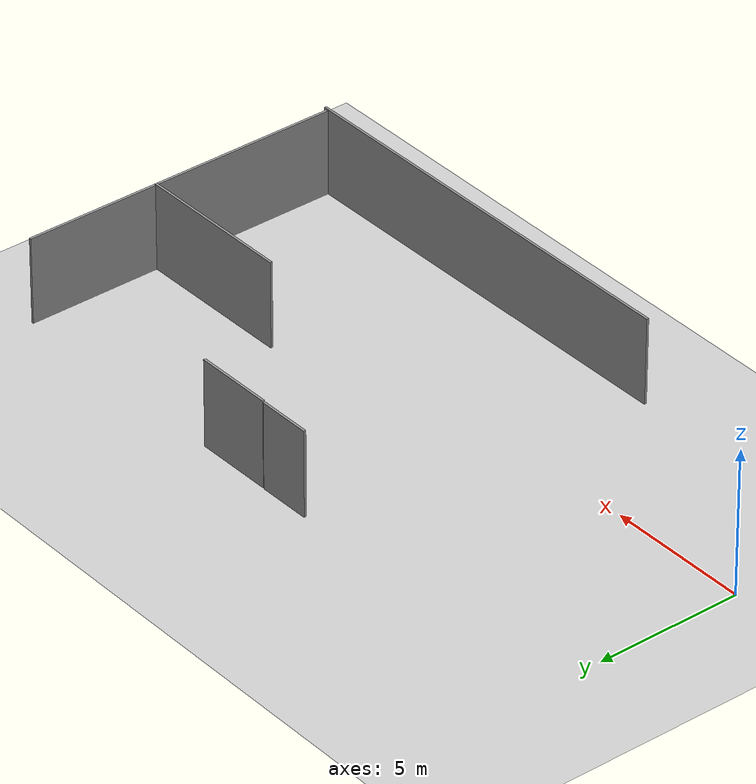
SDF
<sdf version="1.7">
 <world name="default">
  <model name="ground_plane">
   <static>1</static>
   <link name="link">
    <collision name="collision">
     <geometry><plane><normal>0 0 1</normal><size>100 100</size></plane></geometry>
     <surface><friction><ode><mu>100</mu><mu2>50</mu2></ode></friction></surface>
    </collision>
    <visual name="visual">
     <cast_shadows>0</cast_shadows>
     <geometry><plane><normal>0 0 1</normal><size>100 100</size></plane></geometry>
     <material>
      <script><uri>file://media/materials/scripts/gazebo.material</uri><name>Gazebo/Grey</name></script>
     </material>
    </visual>
   </link>
  </model>
  <model name="asphalt_plane">
   <static>1</static>
   <link name="link">
    <collision name="collision"><geometry><box><size>0 0 0.1</size></box></geometry></collision>
    <visual name="visual">
     <cast_shadows>0</cast_shadows>
     <geometry><box><size>0 0 0.1</size></box></geometry>
     <material>
      <script>
       <uri>model://asphalt_plane/materials/scripts</uri>
       <uri>model://asphalt_plane/materials/textures</uri>
       <name>vrc/asphalt</name>
      </script>
     </material>
    </visual>
   </link>
   <pose>2.95258 9.97724 0 0 -0 0</pose>
  </model>
  <model name="static_wall_clone_clone_clone_0">
   <link name="link">
    <inertial>
     <mass>0.0287644</mass>
     <inertia>
      <ixx>0.0243175</ixx>
      <ixy>0</ixy>
      <ixz>0</ixz>
      <iyy>0.0523841</iyy>
      <iyz>0</iyz>
      <izz>0.0280974</izz>
     </inertia>
    </inertial>
    <visual name="visual">
     <geometry><box><size>14.8291 0.080235 3.18409</size></box></geometry>
     <material>
      <script><name>Gazebo/Grey</name><uri>file://media/materials/scripts/gazebo.material</uri></script>
      <shader type="pixel"/>
     </material>
    </visual>
    <collision name="collision">
     <geometry><box><size>14.8291 0.080235 3.18409</size></box></geometry>
     <surface>
      <friction>
       <ode><mu>1</mu><mu2>1</mu2><fdir1>0 0 0</fdir1><slip1>0</slip1><slip2>0</slip2></ode>
       <torsional>
        <coefficient>1</coefficient>
        <patch_radius>0</patch_radius>
        <surface_radius>0</surface_radius>
        <use_patch_radius>1</use_patch_radius>
        <ode><slip>0</slip></ode>
       </torsional>
      </friction>
      <bounce><restitution_coefficient>0</restitution_coefficient><threshold>1e+06</threshold></bounce>
      <contact>
       <collide_without_contact>0</collide_without_contact>
       <collide_without_contact_bitmask>1</collide_without_contact_bitmask>
       <collide_bitmask>1</collide_bitmask>
       <ode>
        <soft_cfm>0</soft_cfm>
        <soft_erp>0.2</soft_erp>
        <kp>1e+13</kp>
        <kd>1</kd>
        <max_vel>0.01</max_vel>
        <min_depth>0</min_depth>
       </ode>
       <bullet>
        <split_impulse>1</split_impulse>
        <split_impulse_penetration_threshold>-0.01</split_impulse_penetration_threshold>
        <soft_cfm>0</soft_cfm>
        <soft_erp>0.2</soft_erp>
        <kp>1e+13</kp>
        <kd>1</kd>
       </bullet>
      </contact>
     </surface>
    </collision>
   </link>
   <static>1</static>
   <allow_auto_disable>0</allow_auto_disable>
   <pose>16.2201 -4.2176 1.40864 -4.4e-05 -0.003033 0.006169</pose>
  </model>
  <model name="static_wall_clone_1_clone_clone_clone">
   <link name="link">
    <inertial>
     <mass>0.0287644</mass>
     <inertia>
      <ixx>0.0243175</ixx>
      <ixy>0</ixy>
      <ixz>0</ixz>
      <iyy>0.0523841</iyy>
      <iyz>0</iyz>
      <izz>0.0280974</izz>
     </inertia>
    </inertial>
    <visual name="visual">
     <geometry><box><size>6.60868 0.080235 3.18409</size></box></geometry>
     <material>
      <script><name>Gazebo/Grey</name><uri>file://media/materials/scripts/gazebo.material</uri></script>
      <shader type="pixel"/>
     </material>
    </visual>
    <collision name="collision">
     <geometry><box><size>6.60868 0.080235 3.18409</size></box></geometry>
     <surface>
      <friction>
       <ode><mu>1</mu><mu2>1</mu2><fdir1>0 0 0</fdir1><slip1>0</slip1><slip2>0</slip2></ode>
       <torsional>
        <coefficient>1</coefficient>
        <patch_radius>0</patch_radius>
        <surface_radius>0</surface_radius>
        <use_patch_radius>1</use_patch_radius>
        <ode><slip>0</slip></ode>
       </torsional>
      </friction>
      <bounce><restitution_coefficient>0</restitution_coefficient><threshold>1e+06</threshold></bounce>
      <contact>
       <collide_without_contact>0</collide_without_contact>
       <collide_without_contact_bitmask>1</collide_without_contact_bitmask>
       <collide_bitmask>1</collide_bitmask>
       <ode>
        <soft_cfm>0</soft_cfm>
        <soft_erp>0.2</soft_erp>
        <kp>1e+13</kp>
        <kd>1</kd>
        <max_vel>0.01</max_vel>
        <min_depth>0</min_depth>
       </ode>
       <bullet>
        <split_impulse>1</split_impulse>
        <split_impulse_penetration_threshold>-0.01</split_impulse_penetration_threshold>
        <soft_cfm>0</soft_cfm>
        <soft_erp>0.2</soft_erp>
        <kp>1e+13</kp>
        <kd>1</kd>
       </bullet>
      </contact>
     </surface>
    </collision>
   </link>
   <static>1</static>
   <allow_auto_disable>0</allow_auto_disable>
   <pose>23.4956 -0.886879 1.3839 0.003033 -3e-05 -1.56934</pose>
  </model>
  <model name="static_wall_clone_1_clone_clone_clone_clone">
   <link name="link">
    <inertial>
     <mass>0.0287644</mass>
     <inertia>
      <ixx>0.0243175</ixx>
      <ixy>0</ixy>
      <ixz>0</ixz>
      <iyy>0.0523841</iyy>
      <iyz>0</iyz>
      <izz>0.0280974</izz>
     </inertia>
    </inertial>
    <visual name="visual">
     <geometry><box><size>4.69181 0.080235 3.18409</size></box></geometry>
     <material>
      <script><name>Gazebo/Grey</name><uri>file://media/materials/scripts/gazebo.material</uri></script>
      <shader type="pixel"/>
     </material>
    </visual>
    <collision name="collision">
     <geometry><box><size>4.69181 0.080235 3.18409</size></box></geometry>
     <surface>
      <friction>
       <ode><mu>1</mu><mu2>1</mu2><fdir1>0 0 0</fdir1><slip1>0</slip1><slip2>0</slip2></ode>
       <torsional>
        <coefficient>1</coefficient>
        <patch_radius>0</patch_radius>
        <surface_radius>0</surface_radius>
        <use_patch_radius>1</use_patch_radius>
        <ode><slip>0</slip></ode>
       </torsional>
      </friction>
      <bounce><restitution_coefficient>0</restitution_coefficient><threshold>1e+06</threshold></bounce>
      <contact>
       <collide_without_contact>0</collide_without_contact>
       <collide_without_contact_bitmask>1</collide_without_contact_bitmask>
       <collide_bitmask>1</collide_bitmask>
       <ode>
        <soft_cfm>0</soft_cfm>
        <soft_erp>0.2</soft_erp>
        <kp>1e+13</kp>
        <kd>1</kd>
        <max_vel>0.01</max_vel>
        <min_depth>0</min_depth>
       </ode>
       <bullet>
        <split_impulse>1</split_impulse>
        <split_impulse_penetration_threshold>-0.01</split_impulse_penetration_threshold>
        <soft_cfm>0</soft_cfm>
        <soft_erp>0.2</soft_erp>
        <kp>1e+13</kp>
        <kd>1</kd>
       </bullet>
      </contact>
     </surface>
    </collision>
   </link>
   <static>1</static>
   <allow_auto_disable>0</allow_auto_disable>
   <pose>23.4887 4.75595 1.38387 0.003033 -3e-05 -1.56934</pose>
  </model>
  <model name="static_wall_clone_clone_clone_0_clone">
   <link name="link">
    <inertial>
     <mass>0.0287644</mass>
     <inertia>
      <ixx>0.0243175</ixx>
      <ixy>0</ixy>
      <ixz>0</ixz>
      <iyy>0.0523841</iyy>
      <iyz>0</iyz>
      <izz>0.0280974</izz>
     </inertia>
    </inertial>
    <visual name="visual">
     <geometry><box><size>5.48498 0.080235 3.18409</size></box></geometry>
     <material>
      <script><name>Gazebo/Grey</name><uri>file://media/materials/scripts/gazebo.material</uri></script>
      <shader type="pixel"/>
     </material>
    </visual>
    <collision name="collision">
     <geometry><box><size>5.48498 0.080235 3.18409</size></box></geometry>
     <surface>
      <friction>
       <ode><mu>1</mu><mu2>1</mu2><fdir1>0 0 0</fdir1><slip1>0</slip1><slip2>0</slip2></ode>
       <torsional>
        <coefficient>1</coefficient>
        <patch_radius>0</patch_radius>
        <surface_radius>0</surface_radius>
        <use_patch_radius>1</use_patch_radius>
        <ode><slip>0</slip></ode>
       </torsional>
      </friction>
      <bounce><restitution_coefficient>0</restitution_coefficient><threshold>1e+06</threshold></bounce>
      <contact>
       <collide_without_contact>0</collide_without_contact>
       <collide_without_contact_bitmask>1</collide_without_contact_bitmask>
       <collide_bitmask>1</collide_bitmask>
       <ode>
        <soft_cfm>0</soft_cfm>
        <soft_erp>0.2</soft_erp>
        <kp>1e+13</kp>
        <kd>1</kd>
        <max_vel>0.01</max_vel>
        <min_depth>0</min_depth>
       </ode>
       <bullet>
        <split_impulse>1</split_impulse>
        <split_impulse_penetration_threshold>-0.01</split_impulse_penetration_threshold>
        <soft_cfm>0</soft_cfm>
        <soft_erp>0.2</soft_erp>
        <kp>1e+13</kp>
        <kd>1</kd>
       </bullet>
      </contact>
     </surface>
    </collision>
   </link>
   <static>1</static>
   <allow_auto_disable>0</allow_auto_disable>
   <pose>20.7214 2.40977 1.42233 -4.4e-05 -0.003033 0.006169</pose>
  </model>
  <model name="static_wall_clone_2_clone_clone">
   <link name="link">
    <inertial>
     <mass>0.0287644</mass>
     <inertia>
      <ixx>0.0243175</ixx>
      <ixy>0</ixy>
      <ixz>0</ixz>
      <iyy>0.0523841</iyy>
      <iyz>0</iyz>
      <izz>0.0280974</izz>
     </inertia>
    </inertial>
    <visual name="visual">
     <geometry><box><size>1.84694 0.080235 3.18409</size></box></geometry>
     <material>
      <script><name>Gazebo/Grey</name><uri>file://media/materials/scripts/gazebo.material</uri></script>
      <shader type="pixel"/>
     </material>
    </visual>
    <collision name="collision">
     <geometry><box><size>1.84694 0.080235 3.18409</size></box></geometry>
     <surface>
      <friction>
       <ode><mu>1</mu><mu2>1</mu2><fdir1>0 0 0</fdir1><slip1>0</slip1><slip2>0</slip2></ode>
       <torsional>
        <coefficient>1</coefficient>
        <patch_radius>0</patch_radius>
        <surface_radius>0</surface_radius>
        <use_patch_radius>1</use_patch_radius>
        <ode><slip>0</slip></ode>
       </torsional>
      </friction>
      <bounce><restitution_coefficient>0</restitution_coefficient><threshold>1e+06</threshold></bounce>
      <contact>
       <collide_without_contact>0</collide_without_contact>
       <collide_without_contact_bitmask>1</collide_without_contact_bitmask>
       <collide_bitmask>1</collide_bitmask>
       <ode>
        <soft_cfm>0</soft_cfm>
        <soft_erp>0.2</soft_erp>
        <kp>1e+13</kp>
        <kd>1</kd>
        <max_vel>0.01</max_vel>
        <min_depth>0</min_depth>
       </ode>
       <bullet>
        <split_impulse>1</split_impulse>
        <split_impulse_penetration_threshold>-0.01</split_impulse_penetration_threshold>
        <soft_cfm>0</soft_cfm>
        <soft_erp>0.2</soft_erp>
        <kp>1e+13</kp>
        <kd>1</kd>
       </bullet>
      </contact>
     </surface>
    </collision>
   </link>
   <static>1</static>
   <allow_auto_disable>0</allow_auto_disable>
   <pose>11.5383 7.01353 1.38963 -4.4e-05 -0.003033 0.006169</pose>
  </model>
  <model name="static_wall_clone_clone_clone_0_clone_clone_clone_clone_clone">
   <link name="link">
    <inertial>
     <mass>0.0287644</mass>
     <inertia>
      <ixx>0.0243175</ixx>
      <ixy>0</ixy>
      <ixz>0</ixz>
      <iyy>0.0523841</iyy>
      <iyz>0</iyz>
      <izz>0.0280974</izz>
     </inertia>
    </inertial>
    <visual name="visual">
     <geometry><box><size>2.72289 0.080235 3.18409</size></box></geometry>
     <material>
      <script><name>Gazebo/Grey</name><uri>file://media/materials/scripts/gazebo.material</uri></script>
      <shader type="pixel"/>
     </material>
    </visual>
    <collision name="collision">
     <geometry><box><size>2.72289 0.080235 3.18409</size></box></geometry>
     <surface>
      <friction>
       <ode><mu>1</mu><mu2>1</mu2><fdir1>0 0 0</fdir1><slip1>0</slip1><slip2>0</slip2></ode>
       <torsional>
        <coefficient>1</coefficient>
        <patch_radius>0</patch_radius>
        <surface_radius>0</surface_radius>
        <use_patch_radius>1</use_patch_radius>
        <ode><slip>0</slip></ode>
       </torsional>
      </friction>
      <bounce><restitution_coefficient>0</restitution_coefficient><threshold>1e+06</threshold></bounce>
      <contact>
       <collide_without_contact>0</collide_without_contact>
       <collide_without_contact_bitmask>1</collide_without_contact_bitmask>
       <collide_bitmask>1</collide_bitmask>
       <ode>
        <soft_cfm>0</soft_cfm>
        <soft_erp>0.2</soft_erp>
        <kp>1e+13</kp>
        <kd>1</kd>
        <max_vel>0.01</max_vel>
        <min_depth>0</min_depth>
       </ode>
       <bullet>
        <split_impulse>1</split_impulse>
        <split_impulse_penetration_threshold>-0.01</split_impulse_penetration_threshold>
        <soft_cfm>0</soft_cfm>
        <soft_erp>0.2</soft_erp>
        <kp>1e+13</kp>
        <kd>1</kd>
       </bullet>
      </contact>
     </surface>
    </collision>
   </link>
   <static>1</static>
   <allow_auto_disable>0</allow_auto_disable>
   <pose>13.8588 7.01786 1.42318 -4.4e-05 -0.003033 0.006169</pose>
  </model>
 </world>
</sdf>
